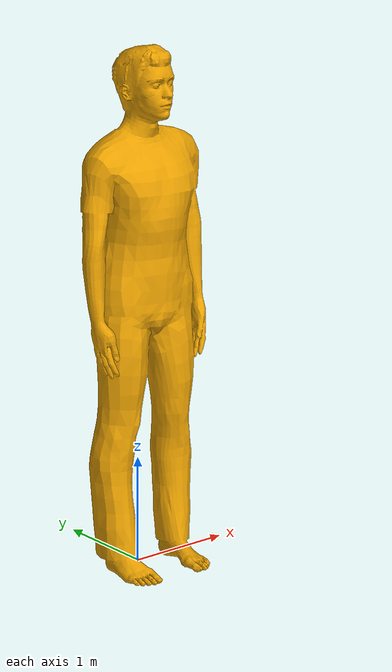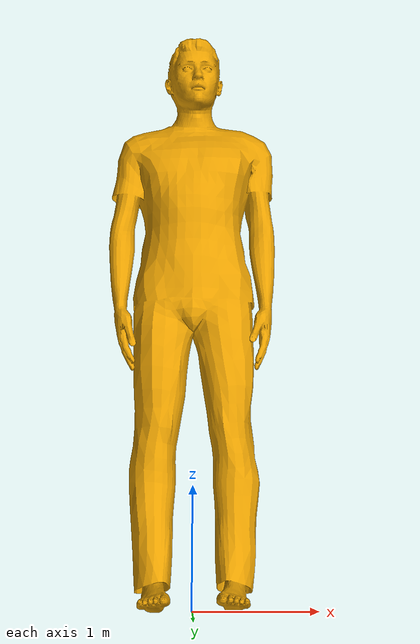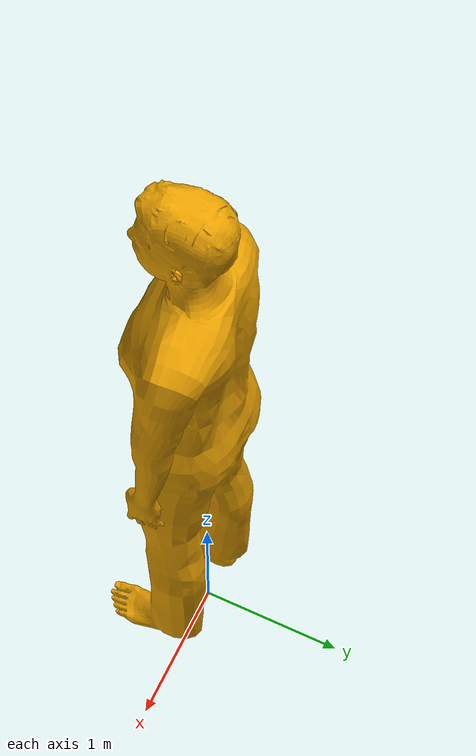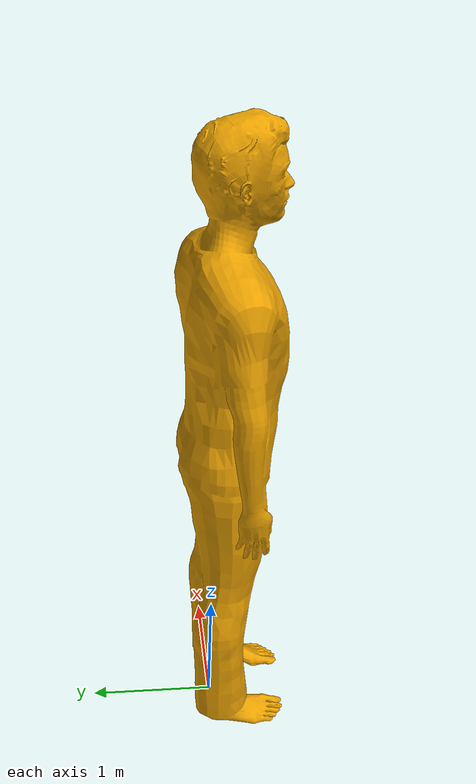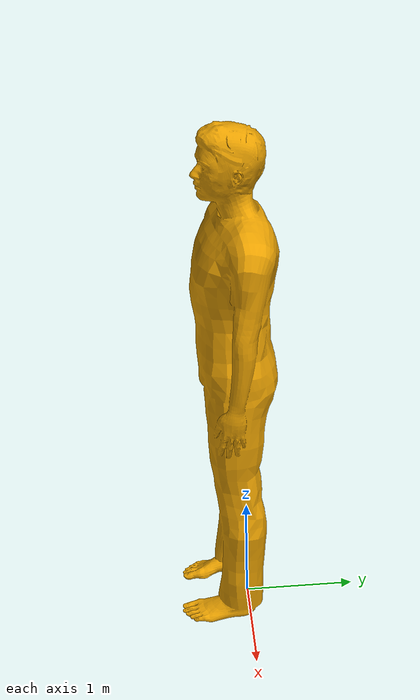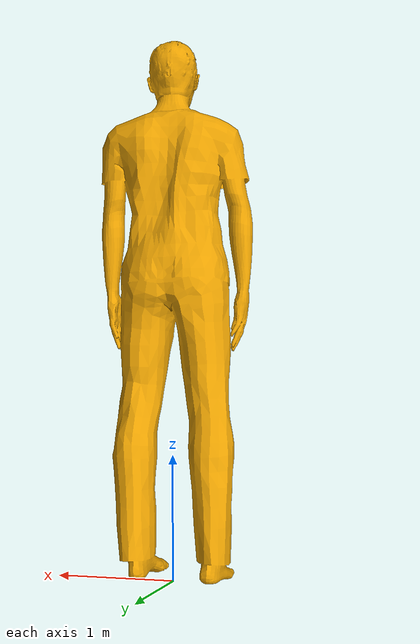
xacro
<?xml version="1.0"?>
<robot xmlns:xacro="http://ros.org/wiki/xacro" name="pedestrian">

  <link name="base_link">
    <inertial>
      <mass value="200.0"/> <origin xyz="0 0 0.1" rpy="0 0 0"/> <inertia ixx="50.0" ixy="0" ixz="0" iyy="50.0" iyz="0" izz="50.0"/>
    </inertial>

    <visual>
      <origin xyz="0 0 0" rpy="0 0 0"/>
      <geometry>
        <mesh filename="model://person_standing/meshes/standing.dae" scale="2.5 2.5 2.5"/>
      </geometry>
    </visual>

    <collision>
      <origin xyz="0 0 2.25" rpy="0 0 0"/>
      <geometry>
        <box size="1.2 1.2 4.5"/>
      </geometry>
    </collision>
  </link>

  <gazebo reference="base_link">
    <mu1>0.01</mu1>
    <mu2>0.01</mu2>
  </gazebo>

  <gazebo>
    <plugin name="pedestrian_controller" filename="libgazebo_ros_planar_move.so">
      <ros>
        <remapping>cmd_vel:=cmd_vel</remapping>
        <remapping>odom:=odom</remapping>
      </ros>
      <update_rate>20</update_rate>
      <publish_rate>10</publish_rate>
      <frame_name>base_link</frame_name>
      <child_frame_id>base_link</child_frame_id>
    </plugin>
  </gazebo>
</robot>
